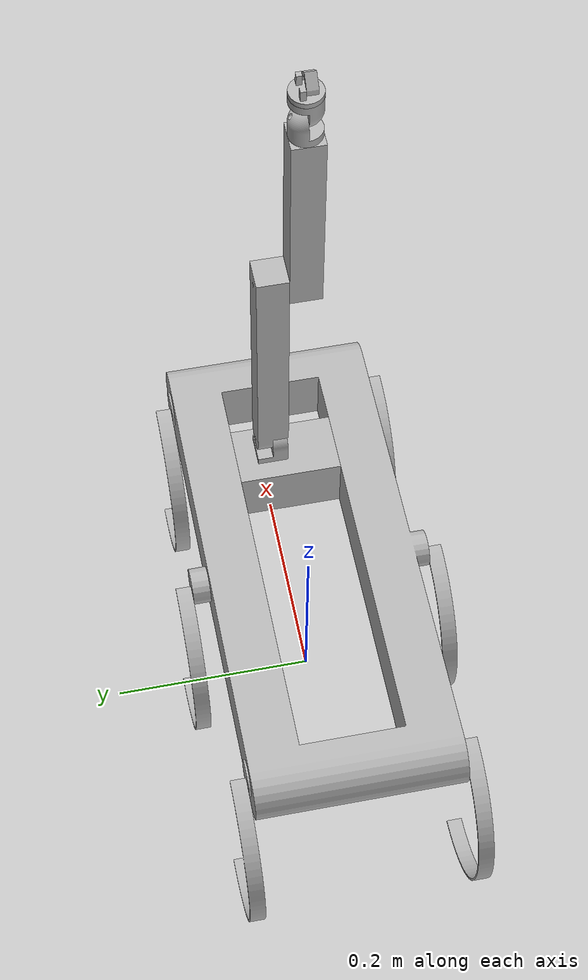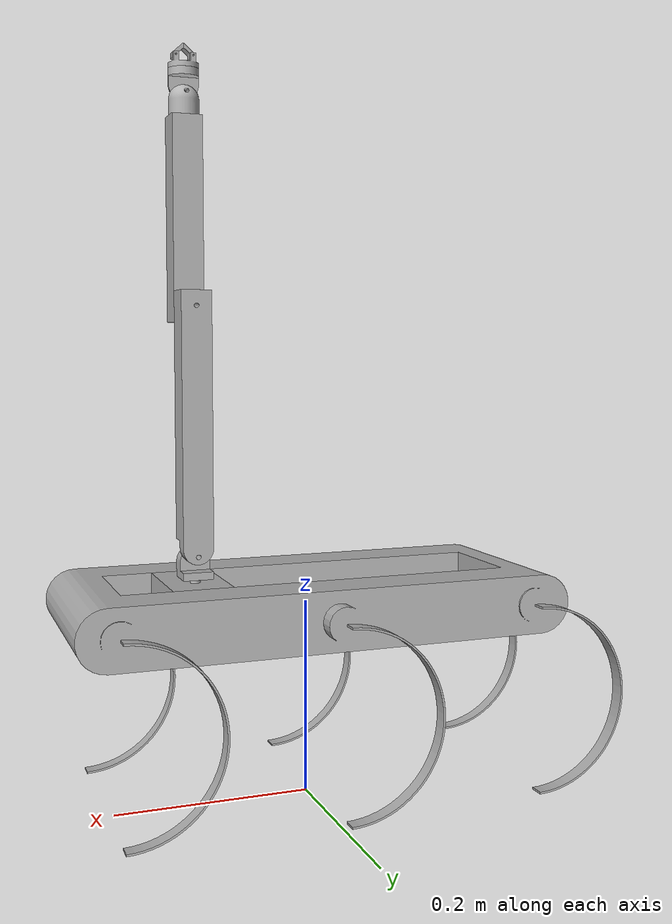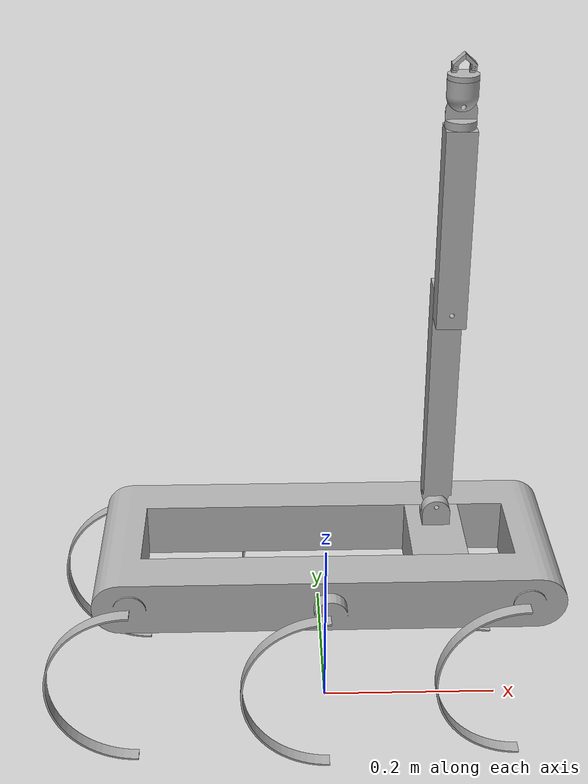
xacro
<?xml version="1.0" ?>
<robot name="arhex" xmlns:xacro="http://www.ros.org/wiki/xacro">

<xacro:include filename="$(find arhex_description)/urdf/materials.xacro" />
<xacro:include filename="$(find arhex_description)/urdf/arhex.trans" />
<xacro:include filename="$(find arhex_description)/urdf/arhex.gazebo" />
<link name="footprint" />
<link name="base_link">
  <inertial>
    <origin rpy="0 0 0" xyz="0.00026976113326567376 0.0 0.2"/>
    <mass value="3.703374358474152"/>
    <inertia ixx="0.020087" ixy="-0.0" ixz="-0.0" iyy="0.090417" iyz="0.0" izz="0.108396"/>
  </inertial>
  <visual>
    <origin rpy="0 0 0" xyz="0 0 0.2"/>
    <geometry>
      <mesh filename="package://arhex_description/meshes/base_link.stl" scale="0.001 0.001 0.001"/>
    </geometry>
    <material name="silver"/>
  </visual>
  <collision>
    <origin rpy="0 0 0" xyz="0 0 0.2"/>
    <geometry>
      <mesh filename="package://arhex_description/meshes/base_link.stl" scale="0.001 0.001 0.001"/>
    </geometry>
  </collision>
</link>
<joint name="base_joint" type="fixed">
  <parent link="footprint"/>
  <child link="base_link"/>
</joint>
<link name="torso_1">
  <inertial>
    <origin rpy="0 0 0" xyz="1.2212453270876722e-14 -0.0499832912360148 3.620232196793651e-05"/>
    <mass value="0.3736910404945874"/>
    <inertia ixx="0.000426" ixy="-0.0" ixz="-0.0" iyy="0.000229" iyz="-0.0" izz="0.000426"/>
  </inertial>
  <visual>
    <origin rpy="0 0 0" xyz="-0.12 -0.05 -0.0"/>
    <geometry>
      <mesh filename="package://arhex_description/meshes/torso_1.stl" scale="0.001 0.001 0.001"/>
    </geometry>
    <material name="silver"/>
  </visual>
  <collision>
    <origin rpy="0 0 0" xyz="-0.12 -0.05 -0.0"/>
    <geometry>
      <mesh filename="package://arhex_description/meshes/torso_1.stl" scale="0.001 0.001 0.001"/>
    </geometry>
  </collision>
</link>

<link name="shoulder_1">
  <inertial>
    <origin rpy="0 0 0" xyz="1.7208456881689926e-15 -0.004181551355216745 0.011286652343633782"/>
    <mass value="0.015935762832508082"/>
    <inertia ixx="2e-06" ixy="0.0" ixz="-0.0" iyy="2e-06" iyz="0.0" izz="2e-06"/>
  </inertial>
  <visual>
    <origin rpy="0 0 0" xyz="-0.12 -0.015 -0.035"/>
    <geometry>
      <mesh filename="package://arhex_description/meshes/shoulder_1.stl" scale="0.001 0.001 0.001"/>
    </geometry>
    <material name="silver"/>
  </visual>
  <collision>
    <origin rpy="0 0 0" xyz="-0.12 -0.015 -0.035"/>
    <geometry>
      <mesh filename="package://arhex_description/meshes/shoulder_1.stl" scale="0.001 0.001 0.001"/>
    </geometry>
  </collision>
</link>

<link name="upperarm_1">
  <inertial>
    <origin rpy="0 0 0" xyz="-3.3306690738754696e-16 0.0002781080914872648 0.13111538727151936"/>
    <mass value="0.23960543654925723"/>
    <inertia ixx="0.001291" ixy="-0.0" ixz="0.0" iyy="0.001291" iyz="8e-06" izz="3.6e-05"/>
  </inertial>
  <visual>
    <origin rpy="0 0 0" xyz="-0.12 -0.015 -0.0575"/>
    <geometry>
      <mesh filename="package://arhex_description/meshes/upperarm_1.stl" scale="0.001 0.001 0.001"/>
    </geometry>
    <material name="silver"/>
  </visual>
  <collision>
    <origin rpy="0 0 0" xyz="-0.12 -0.015 -0.0575"/>
    <geometry>
      <mesh filename="package://arhex_description/meshes/upperarm_1.stl" scale="0.001 0.001 0.001"/>
    </geometry>
  </collision>
</link>

<link name="forearm_1">
  <inertial>
    <origin rpy="0 0 0" xyz="8.743006318923108e-16 -0.014999999999999998 0.08527907512073357"/>
    <mass value="0.19017560846009895"/>
    <inertia ixx="0.000646" ixy="-0.0" ixz="0.0" iyy="0.000646" iyz="0.0" izz="2.9e-05"/>
  </inertial>
  <visual>
    <origin rpy="0 0 0" xyz="-0.12 -0.0 -0.3"/>
    <geometry>
      <mesh filename="package://arhex_description/meshes/forearm_1.stl" scale="0.001 0.001 0.001"/>
    </geometry>
    <material name="silver"/>
  </visual>
  <collision>
    <origin rpy="0 0 0" xyz="-0.12 -0.0 -0.3"/>
    <geometry>
      <mesh filename="package://arhex_description/meshes/forearm_1.stl" scale="0.001 0.001 0.001"/>
    </geometry>
  </collision>
</link>

<link name="wrist_1_1">
  <inertial>
    <origin rpy="0 0 0" xyz="-4.049678915818422e-08 0.0031269775133852505 0.010409122598549925"/>
    <mass value="0.01190830722415195"/>
    <inertia ixx="1e-06" ixy="-0.0" ixz="0.0" iyy="1e-06" iyz="-0.0" izz="1e-06"/>
  </inertial>
  <visual>
    <origin rpy="0 0 0" xyz="-0.12 0.015 -0.485"/>
    <geometry>
      <mesh filename="package://arhex_description/meshes/wrist_1_1.stl" scale="0.001 0.001 0.001"/>
    </geometry>
    <material name="silver"/>
  </visual>
  <collision>
    <origin rpy="0 0 0" xyz="-0.12 0.015 -0.485"/>
    <geometry>
      <mesh filename="package://arhex_description/meshes/wrist_1_1.stl" scale="0.001 0.001 0.001"/>
    </geometry>
  </collision>
</link>

<link name="wrist_2_1">
  <inertial>
    <origin rpy="0 0 0" xyz="-2.1699270158492823e-10 -0.003127028234251761 0.012090899904876884"/>
    <mass value="0.011908242587463931"/>
    <inertia ixx="1e-06" ixy="-0.0" ixz="-0.0" iyy="1e-06" iyz="-0.0" izz="1e-06"/>
  </inertial>
  <visual>
    <origin rpy="0 0 0" xyz="-0.12 0.015 -0.5075"/>
    <geometry>
      <mesh filename="package://arhex_description/meshes/wrist_2_1.stl" scale="0.001 0.001 0.001"/>
    </geometry>
    <material name="silver"/>
  </visual>
  <collision>
    <origin rpy="0 0 0" xyz="-0.12 0.015 -0.5075"/>
    <geometry>
      <mesh filename="package://arhex_description/meshes/wrist_2_1.stl" scale="0.001 0.001 0.001"/>
    </geometry>
  </collision>
</link>

<link name="palm_1">
  <inertial>
    <origin rpy="0 0 0" xyz="-1.7359919057824413e-11 0.0005267783635402104 0.003358343087855098"/>
    <mass value="0.004243048364927282"/>
    <inertia ixx="0.0" ixy="0.0" ixz="0.0" iyy="0.0" iyz="-0.0" izz="0.0"/>
  </inertial>
  <visual>
    <origin rpy="0 0 0" xyz="-0.12 0.015 -0.53"/>
    <geometry>
      <mesh filename="package://arhex_description/meshes/palm_1.stl" scale="0.001 0.001 0.001"/>
    </geometry>
    <material name="silver"/>
  </visual>
  <collision>
    <origin rpy="0 0 0" xyz="-0.12 0.015 -0.53"/>
    <geometry>
      <mesh filename="package://arhex_description/meshes/palm_1.stl" scale="0.001 0.001 0.001"/>
    </geometry>
  </collision>
</link>

<link name="right_endeffector_1">
  <inertial>
    <origin rpy="0 0 0" xyz="-0.0027212692793460447 -0.004999999999999978 0.0041762039773464155"/>
    <mass value="0.0006556991419596745"/>
    <inertia ixx="0.0" ixy="-0.0" ixz="0.0" iyy="0.0" iyz="0.0" izz="0.0"/>
  </inertial>
  <visual>
    <origin rpy="0 0 0" xyz="-0.1285 0.013 -0.5425"/>
    <geometry>
      <mesh filename="package://arhex_description/meshes/right_endeffector_1.stl" scale="0.001 0.001 0.001"/>
    </geometry>
    <material name="silver"/>
  </visual>
  <collision>
    <origin rpy="0 0 0" xyz="-0.1285 0.013 -0.5425"/>
    <geometry>
      <mesh filename="package://arhex_description/meshes/right_endeffector_1.stl" scale="0.001 0.001 0.001"/>
    </geometry>
  </collision>
</link>

<link name="left_endeffector_1">
  <inertial>
    <origin rpy="0 0 0" xyz="0.0027212657030671605 -0.004999999999999999 0.0041762039773463044"/>
    <mass value="0.0006556991419596745"/>
    <inertia ixx="0.0" ixy="0.0" ixz="-0.0" iyy="0.0" iyz="0.0" izz="0.0"/>
  </inertial>
  <visual>
    <origin rpy="0 0 0" xyz="-0.1115 0.013 -0.5425"/>
    <geometry>
      <mesh filename="package://arhex_description/meshes/left_endeffector_1.stl" scale="0.001 0.001 0.001"/>
    </geometry>
    <material name="silver"/>
  </visual>
  <collision>
    <origin rpy="0 0 0" xyz="-0.1115 0.013 -0.5425"/>
    <geometry>
      <mesh filename="package://arhex_description/meshes/left_endeffector_1.stl" scale="0.001 0.001 0.001"/>
    </geometry>
  </collision>
</link>

<link name="leg_FR_1">
  <inertial>
    <origin rpy="0 0 0" xyz="-0.0604811121285076 0.0075000000000000205 -0.09500000000000028"/>
    <mass value="0.024174555469373752"/>
    <inertia ixx="0.00011" ixy="0.0" ixz="0.0" iyy="0.00013" iyz="-0.0" izz="2.1e-05"/>
  </inertial>
  <visual>
    <origin rpy="0 0 0" xyz="-0.21 -0.102 -0.0"/>
    <geometry>
      <mesh filename="package://arhex_description/meshes/leg_FR_1.stl" scale="0.001 0.001 0.001"/>
    </geometry>
    <material name="silver"/>
  </visual>
  <collision>
    <origin rpy="0 0 0" xyz="-0.21 -0.102 -0.0"/>
    <geometry>
      <mesh filename="package://arhex_description/meshes/leg_FR_1.stl" scale="0.001 0.001 0.001"/>
    </geometry>
  </collision>
</link>

<link name="leg_MR_1">
  <inertial>
    <origin rpy="0 0 0" xyz="-0.06048111212850748 0.007499999999999868 -0.09500000000000028"/>
    <mass value="0.024174555469373752"/>
    <inertia ixx="0.00011" ixy="0.0" ixz="0.0" iyy="0.00013" iyz="0.0" izz="2.1e-05"/>
  </inertial>
  <visual>
    <origin rpy="0 0 0" xyz="-0.0 -0.117 -0.0"/>
    <geometry>
      <mesh filename="package://arhex_description/meshes/leg_MR_1.stl" scale="0.001 0.001 0.001"/>
    </geometry>
    <material name="silver"/>
  </visual>
  <collision>
    <origin rpy="0 0 0" xyz="-0.0 -0.117 -0.0"/>
    <geometry>
      <mesh filename="package://arhex_description/meshes/leg_MR_1.stl" scale="0.001 0.001 0.001"/>
    </geometry>
  </collision>
</link>

<link name="leg_RR_1">
  <inertial>
    <origin rpy="0 0 0" xyz="-0.06048111212850768 0.007499999999999993 -0.09500000000000028"/>
    <mass value="0.02417455546937379"/>
    <inertia ixx="0.00011" ixy="0.0" ixz="0.0" iyy="0.00013" iyz="-0.0" izz="2.1e-05"/>
  </inertial>
  <visual>
    <origin rpy="0 0 0" xyz="0.21 -0.102 -0.0"/>
    <geometry>
      <mesh filename="package://arhex_description/meshes/leg_RR_1.stl" scale="0.001 0.001 0.001"/>
    </geometry>
    <material name="silver"/>
  </visual>
  <collision>
    <origin rpy="0 0 0" xyz="0.21 -0.102 -0.0"/>
    <geometry>
      <mesh filename="package://arhex_description/meshes/leg_RR_1.stl" scale="0.001 0.001 0.001"/>
    </geometry>
  </collision>
</link>

<link name="leg_RL_1">
  <inertial>
    <origin rpy="0 0 0" xyz="-0.06048111212850768 -0.0075000000000000205 -0.09500000000000028"/>
    <mass value="0.02417455546937379"/>
    <inertia ixx="0.00011" ixy="0.0" ixz="0.0" iyy="0.00013" iyz="0.0" izz="2.1e-05"/>
  </inertial>
  <visual>
    <origin rpy="0 0 0" xyz="0.21 0.102 -0.0"/>
    <geometry>
      <mesh filename="package://arhex_description/meshes/leg_RL_1.stl" scale="0.001 0.001 0.001"/>
    </geometry>
    <material name="silver"/>
  </visual>
  <collision>
    <origin rpy="0 0 0" xyz="0.21 0.102 -0.0"/>
    <geometry>
      <mesh filename="package://arhex_description/meshes/leg_RL_1.stl" scale="0.001 0.001 0.001"/>
    </geometry>
  </collision>
</link>

<link name="leg_ML_1">
  <inertial>
    <origin rpy="0 0 0" xyz="-0.06048111212850748 -0.007499999999999882 -0.09500000000000028"/>
    <mass value="0.024174555469373752"/>
    <inertia ixx="0.00011" ixy="-0.0" ixz="0.0" iyy="0.00013" iyz="-0.0" izz="2.1e-05"/>
  </inertial>
  <visual>
    <origin rpy="0 0 0" xyz="-0.0 0.117 -0.0"/>
    <geometry>
      <mesh filename="package://arhex_description/meshes/leg_ML_1.stl" scale="0.001 0.001 0.001"/>
    </geometry>
    <material name="silver"/>
  </visual>
  <collision>
    <origin rpy="0 0 0" xyz="-0.0 0.117 -0.0"/>
    <geometry>
      <mesh filename="package://arhex_description/meshes/leg_ML_1.stl" scale="0.001 0.001 0.001"/>
    </geometry>
  </collision>
</link>

<link name="leg_FL_1">
  <inertial>
    <origin rpy="0 0 0" xyz="-0.0604811121285076 -0.007500000000000076 -0.09500000000000028"/>
    <mass value="0.024174555469373752"/>
    <inertia ixx="0.00011" ixy="-0.0" ixz="0.0" iyy="0.00013" iyz="0.0" izz="2.1e-05"/>
  </inertial>
  <visual>
    <origin rpy="0 0 0" xyz="-0.21 0.102 -0.0"/>
    <geometry>
      <mesh filename="package://arhex_description/meshes/leg_FL_1.stl" scale="0.001 0.001 0.001"/>
    </geometry>
    <material name="silver"/>
  </visual>
  <collision>
    <origin rpy="0 0 0" xyz="-0.21 0.102 -0.0"/>
    <geometry>
      <mesh filename="package://arhex_description/meshes/leg_FL_1.stl" scale="0.001 0.001 0.001"/>
    </geometry>
  </collision>
</link>

<joint name="torso" type="revolute">
  <origin rpy="0 0 0" xyz="0.12 0.05 0.2"/>
  <parent link="base_link"/>
  <child link="torso_1"/>
  <axis xyz="0.0 1.0 0.0"/>
  <limit effort="30" lower="-1.570796" upper="0.698132" velocity="4"/>
</joint>

<joint name="shoulder_1" type="revolute">
  <origin rpy="0 0 0" xyz="0.0 -0.035 0.035"/>
  <parent link="torso_1"/>
  <child link="shoulder_1"/>
  <axis xyz="0.0 0.0 1.0"/>
  <limit effort="30" lower="-1.570796" upper="1.570796" velocity="4"/>
</joint>

<joint name="shoulder_2" type="revolute">
  <origin rpy="0 0 0" xyz="0.0 0.0 0.0225"/>
  <parent link="shoulder_1"/>
  <child link="upperarm_1"/>
  <axis xyz="0.0 -1.0 0.0"/>
  <limit effort="30" lower="-1.570796" upper="1.570796" velocity="4"/>
</joint>

<joint name="elbow" type="revolute">
  <origin rpy="0 0 0" xyz="0.0 -0.015 0.2425"/>
  <parent link="upperarm_1"/>
  <child link="forearm_1"/>
  <axis xyz="0.0 1.0 0.0"/>
  <limit effort="30" lower="-3.141593" upper="0.0" velocity="4"/>
</joint>

<joint name="wrist_1" type="revolute">
  <origin rpy="0 0 0" xyz="0.0 -0.015 0.185"/>
  <parent link="forearm_1"/>
  <child link="wrist_1_1"/>
  <axis xyz="0.0 0.0 1.0"/>
  <limit effort="30" lower="-3.141593" upper="0.0" velocity="4"/>
</joint>

<joint name="wrist_2" type="revolute">
  <origin rpy="0 0 0" xyz="0.0 0.0 0.0225"/>
  <parent link="wrist_1_1"/>
  <child link="wrist_2_1"/>
  <axis xyz="0.0 1.0 0.0"/>
  <limit effort="30" lower="-1.570796" upper="1.570796" velocity="4"/>
</joint>

<joint name="wrist_3" type="revolute">
  <origin rpy="0 0 0" xyz="0.0 0.0 0.0225"/>
  <parent link="wrist_2_1"/>
  <child link="palm_1"/>
  <axis xyz="0.0 0.0 1.0"/>
  <limit effort="30" lower="-3.141593" upper="0.0" velocity="4"/>
</joint>

<joint name="ef_1" type="revolute">
  <origin rpy="0 0 0" xyz="0.0085 0.002 0.0125"/>
  <parent link="palm_1"/>
  <child link="right_endeffector_1"/>
  <axis xyz="0.0 1.0 0.0"/>
  <limit effort="30" lower="0.0" upper="1.308997" velocity="4"/>
</joint>

<joint name="ef_2" type="revolute">
  <origin rpy="0 0 0" xyz="-0.0085 0.002 0.0125"/>
  <parent link="palm_1"/>
  <child link="left_endeffector_1"/>
  <axis xyz="0.0 1.0 0.0"/>
  <limit effort="30" lower="-1.22173" upper="0.0" velocity="4"/>
</joint>

<joint name="L_FR" type="continuous">
  <origin rpy="0 0 0" xyz="0.21 0.102 0.2"/>
  <parent link="base_link"/>
  <child link="leg_FR_1"/>
  <axis xyz="0.0 1.0 0.0"/>
  <limit effort="30" velocity="4"/>
  <joint_properties damping="1.0" friction="1.0"/>
</joint>

<joint name="L_MR" type="continuous">
  <origin rpy="0 0 0" xyz="0.0 0.117 0.2"/>
  <parent link="base_link"/>
  <child link="leg_MR_1"/>
  <axis xyz="0.0 1.0 0.0"/>
  <limit effort="30" velocity="4"/>
  <joint_properties damping="1.0" friction="1.0"/>
</joint>

<joint name="L_RR" type="continuous">
  <origin rpy="0 0 0" xyz="-0.21 0.102 0.2"/>
  <parent link="base_link"/>
  <child link="leg_RR_1"/>
  <axis xyz="0.0 1.0 0.0"/>
  <limit effort="30" velocity="4"/>
  <joint_properties damping="1.0" friction="1.0"/>
</joint>

<joint name="L_RL" type="continuous">
  <origin rpy="0 0 0" xyz="-0.21 -0.102 0.2"/>
  <parent link="base_link"/>
  <child link="leg_RL_1"/>
  <axis xyz="0.0 -1.0 0.0"/>
  <limit effort="30" velocity="4"/>
  <joint_properties damping="1.0" friction="1.0"/>
</joint>

<joint name="L_ML" type="continuous">
  <origin rpy="0 0 0" xyz="0.0 -0.117 0.2"/>
  <parent link="base_link"/>
  <child link="leg_ML_1"/>
  <axis xyz="0.0 -1.0 0.0"/>
  <limit effort="30" velocity="4"/>
  <joint_properties damping="1.0" friction="1.0"/>
</joint>

<joint name="L_FL" type="continuous">
  <origin rpy="0 0 0" xyz="0.21 -0.102 0.2"/>
  <parent link="base_link"/>
  <child link="leg_FL_1"/>
  <axis xyz="0.0 -1.0 0.0"/>
  <limit effort="30" velocity="4"/>
  <joint_properties damping="1.0" friction="1.0"/>
</joint>

</robot>

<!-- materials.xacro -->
<robot name="arhex" xmlns:xacro="http://www.ros.org/wiki/xacro" >

<material name="silver">
  <color rgba="0.700 0.700 0.700 1.000"/>
</material>

</robot>

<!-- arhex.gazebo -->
<robot name="arhex" xmlns:xacro="http://www.ros.org/wiki/xacro" >

<xacro:property name="body_color" value="Gazebo/Silver" />

<gazebo>
  <plugin name="gazebo_ros_control" filename="libgazebo_ros_control.so">
    <robotNamespace>/arhex</robotNamespace>
  </plugin>
</gazebo>
<gazebo reference="base_link">
  <material>${body_color}</material>
  <mu1>0.2</mu1>
  <mu2>0.2</mu2>
  <selfCollide>true</selfCollide>
  <gravity>true</gravity>
</gazebo>

<gazebo reference="torso_1">
  <material>${body_color}</material>
  <mu1>0.2</mu1>
  <mu2>0.2</mu2>
  <selfCollide>true</selfCollide>
</gazebo>

<gazebo reference="shoulder_1">
  <material>${body_color}</material>
  <mu1>0.2</mu1>
  <mu2>0.2</mu2>
  <selfCollide>true</selfCollide>
</gazebo>

<gazebo reference="upperarm_1">
  <material>${body_color}</material>
  <mu1>0.2</mu1>
  <mu2>0.2</mu2>
  <selfCollide>true</selfCollide>
</gazebo>

<gazebo reference="forearm_1">
  <material>${body_color}</material>
  <mu1>0.2</mu1>
  <mu2>0.2</mu2>
  <selfCollide>true</selfCollide>
</gazebo>

<gazebo reference="wrist_1_1">
  <material>${body_color}</material>
  <mu1>0.2</mu1>
  <mu2>0.2</mu2>
  <selfCollide>true</selfCollide>
</gazebo>

<gazebo reference="wrist_2_1">
  <material>${body_color}</material>
  <mu1>0.2</mu1>
  <mu2>0.2</mu2>
  <selfCollide>true</selfCollide>
</gazebo>

<gazebo reference="palm_1">
  <material>${body_color}</material>
  <mu1>0.2</mu1>
  <mu2>0.2</mu2>
  <selfCollide>true</selfCollide>
</gazebo>

<gazebo reference="right_endeffector_1">
  <material>${body_color}</material>
  <mu1>0.2</mu1>
  <mu2>0.2</mu2>
  <selfCollide>true</selfCollide>
</gazebo>

<gazebo reference="left_endeffector_1">
  <material>${body_color}</material>
  <mu1>0.2</mu1>
  <mu2>0.2</mu2>
  <selfCollide>true</selfCollide>
</gazebo>

<gazebo reference="leg_FR_1">
  <material>${body_color}</material>
  <mu1>0.2</mu1>
  <mu2>0.2</mu2>
  <selfCollide>true</selfCollide>
</gazebo>

<gazebo reference="leg_MR_1">
  <material>${body_color}</material>
  <mu1>0.2</mu1>
  <mu2>0.2</mu2>
  <selfCollide>true</selfCollide>
</gazebo>

<gazebo reference="leg_RR_1">
  <material>${body_color}</material>
  <mu1>0.2</mu1>
  <mu2>0.2</mu2>
  <selfCollide>true</selfCollide>
</gazebo>

<gazebo reference="leg_RL_1">
  <material>${body_color}</material>
  <mu1>0.2</mu1>
  <mu2>0.2</mu2>
  <selfCollide>true</selfCollide>
</gazebo>

<gazebo reference="leg_ML_1">
  <material>${body_color}</material>
  <mu1>0.2</mu1>
  <mu2>0.2</mu2>
  <selfCollide>true</selfCollide>
</gazebo>

<gazebo reference="leg_FL_1">
  <material>${body_color}</material>
  <mu1>0.2</mu1>
  <mu2>0.2</mu2>
  <selfCollide>true</selfCollide>
</gazebo>

</robot>
